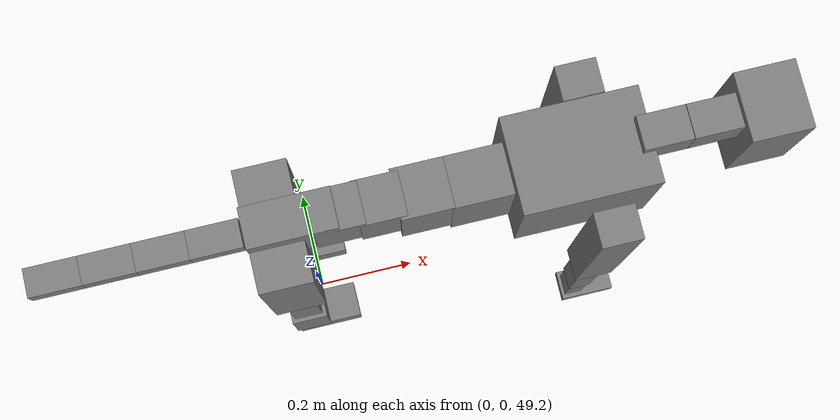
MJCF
<mujoco model="dog">

    <default>
        <joint armature="0.02" stiffness="1" damping="0.2" limited="true"/>
        <geom condim="3" friction="1 0.05 0.05" margin="0.01"/>
        <motor ctrllimited="true" ctrlrange="-1.0 1.0" forcelimited="true" gear="50"/>
    </default>

    <compiler inertiafromgeom="true" angle="radian"/>

    <option timestep="0.016" iterations="50" tolerance="1e-10" solver="Newton" jacobian="dense" cone="pyramidal"/>

    <size nconmax="20000" njmax="60000" nstack="5000000"/>
    <visual>
        <map force="0.1" zfar="30"/>
        <rgba haze="0.15 0.25 0.35 1"/>
        <quality shadowsize="2048"/>
        <global offwidth="800" offheight="800"/>
    </visual>

    <asset>
        <texture type="skybox" builtin="gradient" rgb1="0.3 0.5 0.7" rgb2="0 0 0" width="512" height="512"/>
        <texture name="texplane" type="2d" builtin="checker" rgb1=".2 .3 .4" rgb2=".1 0.15 0.2" width="512" height="512"
                 mark="cross" markrgb=".8 .8 .8"/>
        <texture name="texgeom" type="cube" builtin="flat" mark="cross" width="127" height="1278" rgb1="0.8 0.6 0.4"
                 rgb2="0.8 0.6 0.4" markrgb="1 1 1" random="0.01"/>

        <material name="matplane" reflectance="0.3" texture="texplane" texrepeat="1 1" texuniform="true"/>
        <material name="matgeom" texture="texgeom" texuniform="true" rgba="0.8 0.6 .4 1"/>
    </asset>

    <worldbody>
        <geom name="floor" pos="0 0 0" size="0 0 .25" type="plane" material="matplane" condim="3"/>

        <light directional="false" diffuse=".2 .2 .2" specular="0 0 0" pos="0 0 5" dir="0 0 -1" castshadow="false"/>
        <light mode="targetbodycom" target="torso" directional="false" diffuse=".8 .8 .8" specular="0.3 0.3 0.3"
               pos="0 0 4.0" dir="0 0 -1"/>

        <body name="root" pos="0 0 50">
            <freejoint name="root_1"/>
            <geom type="box" pos="0 0 -0.02" size="0.0774  0.0358  0.063" density="2030"/>

            <body name="spine1" pos="0.054 0 0">
                <joint name="spine1_y" axis="0 1 0" range="0 0.7" limited="true"/>
                <geom type="box" pos="0.02375 0 -0.03" size="0.04375  0.0375  0.05985" density="2030"/>

                <body name="spine2" pos="0.0612 0 0">
                    <joint name="spine2_y" axis="0 1 0" range="-0.15 0.15" limited="true"/>
                    <geom type="box" pos="0.03555  0  -0.04" size="0.04055  0.039  0.06615" density="2030"/>

                    <body name="spine3" pos="0.0730 0 0">
                        <joint name="spine3_y" axis="0 1 0" range="-0.15 0.15" limited="true"/>
                        <geom type="box" pos="0.03555  0  -0.057" size="0.04555  0.0445  0.081" density="2030"/>

                        <body name="spine4" pos="0.0780 0 0">
                            <joint name="spine4_y" axis="0 1 0" range="-0.15 0.15" limited="true"/>
                            <geom type="box" pos="0.05265  0  -0.07" size="0.05265  0.045  0.09135" density="2030"/>

                            <body name="torso" pos="0.1082 0 0">
                                <joint name="torso_y" axis="0 1 0" range="-0.15 0.15" limited="true"/>
                                <geom type="box" pos="0.11925  0  -0.085" size="0.11925  0.085  0.11745"
                                      density="2030"/>

                                <body name="neck1" pos="0.2160  0   0.0180">
                                    <joint name="neck1_y" axis="0 1 0" range="-1.2  -1" limited="true"/>
                                    <geom type="box" pos="0.0423  0  0" size="0.0423  0.03  0.036" density="2325"/>

                                    <body name="neck2" pos="0.0853  0  0">
                                        <joint name="neck2_y" axis="0 1 0" range="0.1  0" limited="true"/>
                                        <geom type="box" pos="0.0423  0  0" size="0.0423  0.03  0.036" density="2325"/>

                                        <body name="head" pos="0.0853  0  0">
                                            <joint name="head_y" axis="0 1 0" range="-0.3  -0.2" limited="true"/>
                                            <geom type="box" pos="0.0531  0  -0.055" size="0.0531  0.06  0.1044"
                                                  density="4030"/>

                                        </body>
                                    </body>
                                </body>

                                <body name="front_shoulder" pos="0.156  0   -0.0480">
                                    <joint name="front_shoulder_y" axis="0 1 0" range="-1 1.5" limited="true"/>
                                    <geom type="box" pos="0 0.13 -0.1785" size="0.0366  0.0313  0.2052" density="1158"/>
                                    <geom type="box" pos="0 -0.13 -0.1785" size="0.0366  0.0313  0.2052"
                                          density="1158"/>

                                    <body name="front_elbow" pos="0  0  -0.3571">
                                        <joint name="front_elbow_y" axis="0 1 0" range="-2 0" limited="true"/>
                                        <geom type="box" pos="0 0.13 -0.1260" size="0.0223  0.0228  0.1260"
                                              density="1081"/>
                                        <geom type="box" pos="0 -0.13 -0.1260" size="0.0223  0.0228  0.1260"
                                              density="1081"/>

                                        <body name="front_wrist" pos="0  0  -0.2520">
                                            <joint name="front_wrist_y" axis="0 1 0" range="-0.2 0" limited="true"/>
                                            <geom type="box" pos="0 0.13 -0.0636" size="0.0186  0.0207  0.0768"
                                                  density="1664"/>
                                            <geom type="box" pos="0 -0.13 -0.0636" size="0.0186  0.0207  0.0768"
                                                  density="1664"/>

                                            <body name="front_finger_end" pos="0  0  -0.1273">
                                                <joint name="front_finger_y" axis="0 1 0" range="-0.4 1"
                                                       limited="true"/>
                                                <geom type="box" pos="0.0302  0.13  0.0016"
                                                      size="0.0553  0.0302  0.0134" density="1515"/>
                                                <geom type="box" pos="0.0302  -0.13  0.0016"
                                                      size="0.0553  0.0302  0.0134" density="1515"/>

                                            </body>

                                        </body>
                                    </body>
                                </body>

                            </body>
                        </body>
                    </body>
                </body>
            </body>

            <body name="back_hip" pos="-0.03 0 -0.018">
                <joint name="back_hip_y" axis="0 1 0" range="-1.5 0.3" limited="true"/>
                <geom type="box" pos="0 0.07 -0.1337" size="0.0468  0.0367  0.1565" density="1154"/>
                <geom type="box" pos="0 -0.07 -0.1337" size="0.0468  0.0367  0.1565" density="1154"/>

                <body name="back_knee" pos="0  0  -0.2674">
                    <joint name="back_knee_y" axis="0 1 0" range="0 2.8" limited="true"/>
                    <geom type="box" pos="0 0.07 -0.1196" size="0.0275  0.0271  0.1352" density="1227"/>
                    <geom type="box" pos="0 -0.07 -0.1196" size="0.0275  0.0271  0.1352" density="1227"/>

                    <body name="back_ankle" pos="0  0  -0.2393">
                        <joint name="back_ankle_y" axis="0 1 0" range="-2.2 0" limited="true"/>
                        <geom type="box" pos="0 0.07 -0.0615" size="0.0353  0.0353  0.0728" density="1284"/>
                        <geom type="box" pos="0 -0.07 -0.0615" size="0.0353  0.0353  0.0728" density="1284"/>

                        <body name="back_toe_end" pos="0  0  -0.1230">
                            <joint name="back_toe_y" axis="0 1 0" range="-0.4 1" limited="true"/>
                            <geom type="box" pos="0.0349  0.07  -0.0116" size="0.0640  0.0349  0.0266" density="1515"/>
                            <geom type="box" pos="0.0349  -0.07  -0.0116" size="0.0640  0.0349  0.0266" density="1515"/>

                        </body>
                    </body>
                </body>
            </body>

            <body name="tail1" pos="-0.074 0 -0.006">
                <joint name="tail1_y" axis="0 1 0" range="-0.2 0.2" limited="true"/>
                <geom type="box" pos="-0.0536  0  0" size="0.045  0.025  0.0175" density="1587"/>

                <body name="tail2" pos="-0.09 0 0">
                    <joint name="tail2_y" axis="0 1 0" range="-0.2 0.2" limited="true"/>
                    <geom type="box" pos="-0.0536  0  0" size="0.045  0.025  0.0175" density="1587"/>

                    <body name="tail3" pos="-0.09 0 0">
                        <joint name="tail3_y" axis="0 1 0" range="-0.2 0.2" limited="true"/>
                        <geom type="box" pos="-0.0536  0  0" size="0.045  0.025  0.0175" density="1587"/>

                        <body name="tail4" pos="-0.09 0 0">
                            <joint name="tail4_y" axis="0 1 0" range="-0.2 0.2" limited="true"/>
                            <geom type="box" pos="-0.0536  0  0" size="0.045  0.025  0.0175" density="1587"/>

                        </body>
                    </body>
                </body>
            </body>
        </body>
    </worldbody>

    <actuator>
        <motor joint="spine1_y" forcerange="-150 150     "/>
        <motor joint="spine2_y" forcerange="-150 150     "/>
        <motor joint="spine3_y" forcerange="-150 150     "/>
        <motor joint="spine4_y" forcerange="-150 150     "/>
        <motor joint="torso_y" forcerange="-150 150     "/>
        <motor joint="neck1_y" forcerange="-100 100       "/>
        <motor joint="neck2_y" forcerange="-100 100       "/>
        <motor joint="head_y" forcerange="-150 150       "/>
        <motor joint="front_shoulder_y" forcerange="-160.76 147.85"/>
        <motor joint="front_elbow_y" forcerange="-125.21 140.60"/>
        <motor joint="front_wrist_y" forcerange="-111.15 54.09"/>
        <motor joint="front_finger_y" forcerange="-26.35 94.51"/>
        <motor joint="back_hip_y" forcerange="-332.52 357.01"/>
        <motor joint="back_knee_y" forcerange="-222.64 371.89"/>
        <motor joint="back_angle_y" forcerange="-225.03 240.52"/>
        <motor joint="back_toe_y" forcerange="-61.60 137.79"/>
        <motor joint="tail1_y" forcerange="-50 50     "/>
        <motor joint="tail2_y" forcerange="-50 50     "/>
        <motor joint="tail3_y" forcerange="-50 50     "/>
        <motor joint="tail4_y" forcerange="-50 50     "/>
    </actuator>
</mujoco>
